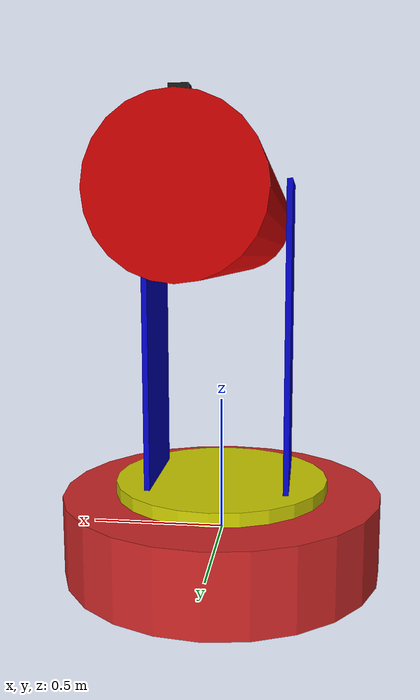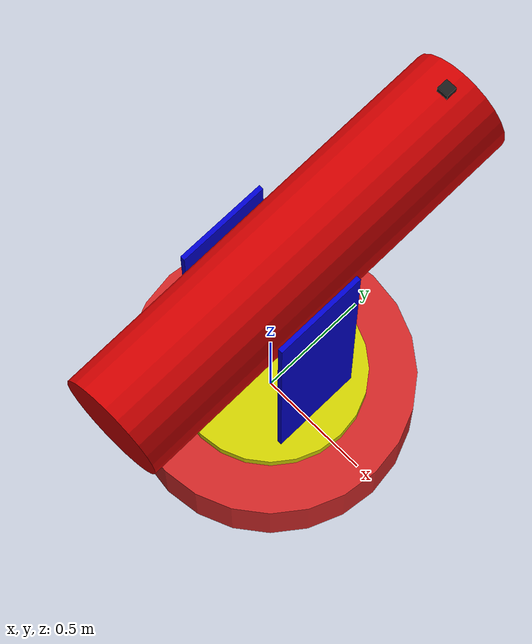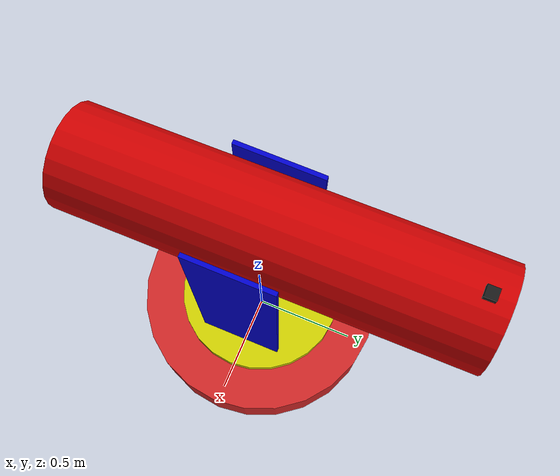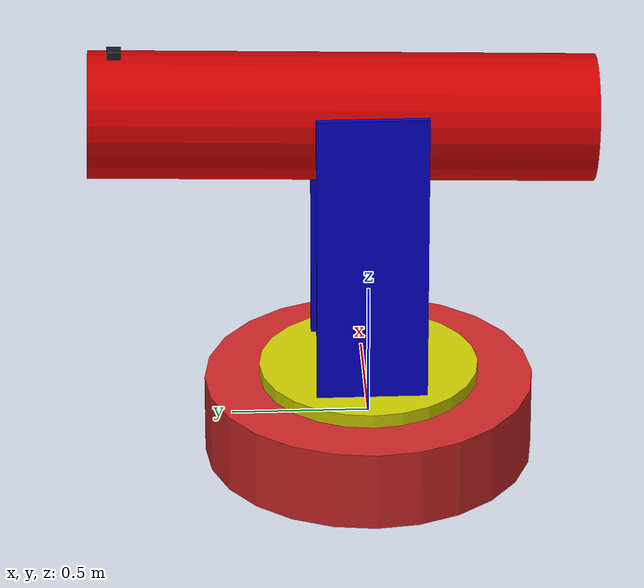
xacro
<?xml version="1.0"?>
<robot xmlns:xacro="http://www.ros.org/wiki/xacro" name="robot_shooter">

  <!-- Constants for robot dimensions -->

  <xacro:property name="camera_size" value="0.05" />
    <!-- BASE LINK-->
  <xacro:property name="base_link_radius" value="0.6"/>
  <xacro:property name="base_link_length" value="0.3"/>

  <!-- PAN LINK-->
  <xacro:property name="pan_link_radius" value="0.4"/>
  <xacro:property name="pan_link_length" value="0.1"/>

  <!-- BOTH PILLAR LINK-->
  <xacro:property name="pillar_link_x" value="0.02"/>
  <xacro:property name="pillar_link_y" value="0.4"/>
  <xacro:property name="pillar_link_z" value="1.5"/>

  <!-- BARREL LINK-->
  <xacro:property name="barrel_link_radius" value="1.25"/>
  <xacro:property name="barrel_link_length" value="1.8"/>

  <!-- LINK MASS -->
  <xacro:property name="base_link_mass" value="5.0"/>
  <xacro:property name="pan_link_mass" value="2.0"/>
  <xacro:property name="pillar_link_mass" value="1.5"/>
  <xacro:property name="barrel_link_mass" value="1.0"/>

  <xacro:macro name="inertia_base">
    <inertial>
      <origin xyz="0 0 0" rpy="0 0 0"/>
      <mass value="${base_link_mass}"/>
      <inertia
        ixx="${(1/12.0)*base_link_mass*(3*base_link_radius*base_link_radius + base_link_length*base_link_length)}"
        ixy="0.0" ixz="0.0"
        iyy="${(1/12.0)*base_link_mass*(3*base_link_radius*base_link_radius + base_link_length*base_link_length)}"
        iyz="0.0"
        izz="${0.5*base_link_mass*base_link_radius*base_link_radius}"/>
    </inertial>
  </xacro:macro>

  <xacro:macro name="inertia_pan">
    <inertial>
      <origin xyz="0 0 0" rpy="0 0 0"/>
      <mass value="${pan_link_mass}"/>
      <inertia
        ixx="${(1/12.0)*pan_link_mass*(3*pan_link_radius*pan_link_radius + pan_link_length*pan_link_length)}"
        ixy="0.0" ixz="0.0"
        iyy="${(1/12.0)*pan_link_mass*(3*pan_link_radius*pan_link_radius + pan_link_length*pan_link_length)}"
        iyz="0.0"
        izz="${0.5*pan_link_mass*pan_link_radius*pan_link_radius}"/>
    </inertial>
  </xacro:macro>

  <material name="red">
    <color rgba="0.8 0 0 1"/>
  </material>

  <material name="green">
    <color rgba="0 0.8 0 1"/>
  </material>

  <material name="blue">
    <color rgba="0 0 0.8 1"/>
  </material>

  <material name="yellow">
    <color rgba="0.8 0.8 0 1"/>
  </material>

<!-- ROBOT CONSTRUCTION -->

  <!-- Robot Base Link -->
  <link name="base_link">
    <visual>
      <geometry>
        <cylinder radius="${base_link_radius}" length="${base_link_length}"/>
      </geometry>
    </visual>
    <collision>
      <geometry>

        <cylinder radius="${base_link_radius}" length="${base_link_length}"/>
      </geometry>
    </collision>

    <xacro:inertia_base />

  </link>

  <!-- Pan Joint - Rotates horizontally -->
  <joint name="base_to_pan_joint" type="continuous">
    <axis xyz="0 0 1" />
    <parent link="base_link"/>
    <child link="pan_link"/>
    <origin xyz="0 0 ${base_link_length/2}"/>
    <dynamics damping="0.1" friction="0.1"/>
  </joint>

  <link name="pan_link">
    <visual>
      <geometry>
        <cylinder radius="${pan_link_radius}" length="${pan_link_length}"/>
      </geometry>
      <material name="yellow"/>
      <origin rpy="0 0 0" xyz="0 0 0"/>
    </visual>
    <collision>
      <geometry>
        <cylinder radius="${pan_link_radius}" length="${pan_link_length}"/>
      </geometry>
    </collision>
    <xacro:inertia_pan />
  </link>

  <joint name="pan_to_left_pillar_joint" type="fixed">
    <parent link="pan_link"/>
    <child link="left_pillar_link"/>
    <origin xyz="0.25 0 0.4"/>
  </joint>

  <link name="left_pillar_link">
    <visual>
      <geometry>
        <box size="${pillar_link_x} ${pillar_link_y} ${pillar_link_z}" />
      </geometry>
      <origin rpy="0 0 0" xyz="0 0 0"/>
      <material name="blue"/>
    </visual>
    <collision>
      <geometry>
        <box size="${pillar_link_x} ${pillar_link_y} ${pillar_link_z}" />
      </geometry>
      <origin xyz="0.0 0.0 0.0" rpy="0.0 0.0 0.0"/>
    </collision>
    <material name="blue" />

  </link>

  <joint name="pan_to_right_pillar_joint" type="fixed">
    <parent link="pan_link"/>
    <child link="right_pillar_link"/>
    <origin xyz="-0.25 0 0.4"/>
  </joint>

  <link name="right_pillar_link">
    <visual>
      <geometry>
        <box size="${pillar_link_x} ${pillar_link_y} ${pillar_link_z}" />
      </geometry>
      <origin rpy="0 0 0" xyz="0 0 0"/>
      <material name="blue" />
    </visual>
     <collision>
      <geometry>
        <box size="${pillar_link_x} ${pillar_link_y} ${pillar_link_z}" />
      </geometry>
      <origin xyz="0.0 0.0 0.0" rpy="0.0 0.0 0.0"/>
    </collision>
    <inertial>
      <mass value="0.5"/>
      <inertia ixx="0.005" ixy="0" ixz="0" iyy="0.005" iyz="0" izz="0.005"/>
    </inertial>
  </link>

  <!-- Gun barrel -->
  <joint name="right_pillar_to_barrel_joint" type="revolute">
    <parent link="right_pillar_link"/>
    <child link="barrel_link"/>
    <origin xyz="0.2 0 0.75" rpy="0 0 0"/>
    <axis xyz="1 0 0" />
    <limit lower="-0.5" upper="0.5" effort="10.0" velocity="1.0"/>
  </joint>

  <link name="barrel_link">
    <visual>
      <geometry>
        <cylinder radius="${barrel_link_radius/5.5}" length="${barrel_link_length}"/>
      </geometry>
      <origin rpy="1.6 0 0" xyz="0.05 0.1 -0.1"/>
      <material name="red"/>
    </visual>
    <collision>
      <geometry>
        <cylinder radius="${barrel_link_radius/5}" length="${barrel_link_length}"/>
      </geometry>
      <origin rpy="1.65 0 0" xyz="0 0.1 0.1"/>
    </collision>
    <inertial>
      <mass value="${barrel_link_mass}"/>
      <inertia ixx="0.001" ixy="0" ixz="0" iyy="0.001" iyz="0" izz="0.001"/>
    </inertial>
  </link>

  <!-- Camera joint and link -->
  <joint name="camera_joint" type="fixed">
    <parent link="barrel_link"/>
    <child link="camera_link"/>
    <origin xyz="0.05 ${barrel_link_length/2} 0.15" rpy="0 0 1.5708"/>
  </joint>

  <link name="camera_link">
    <visual>
      <geometry>
        <box size="${camera_size} ${camera_size} ${camera_size}"/>
      </geometry>
      <origin xyz="0.0 0.0 0.0" rpy="0.0 0.0 0.0"/>
      <material name="black">
        <color rgba="0.1 0.1 0.1 1.0"/>
      </material>
    </visual>
    <collision>
      <geometry>
        <box size="${camera_size} ${camera_size} ${camera_size}"/>
      </geometry>
    </collision>
    <inertial>
      <origin xyz="0.0 0.0 0.0"/>
      <mass value="0.1"/>
      <inertia ixx="0.0001" ixy="0" ixz="0" iyy="0.0001" iyz="0" izz="0.0001"/>
    </inertial>
  </link>

  <!-- Camera sensor -->

  <!-- Camera sensor  -->
  <gazebo reference="camera_link">
    <sensor type="camera" name="camera">
      <visualize>true</visualize>
      <update_rate>30.0</update_rate>
      <camera name="shooter_camera">
        <horizontal_fov>1.0472</horizontal_fov>
        <image>
          <width>640</width>
          <height>480</height>
          <format>R8G8B8</format>
        </image>
        <clip>
          <near>0.02</near>
          <far>80</far>
        </clip>
        <noise>
          <type>gaussian</type>
          <mean>0.0</mean>
          <stddev>0.007</stddev>
        </noise>
      </camera>
      <plugin name="camera_controller" filename="libgazebo_ros_camera.so">
        <alwaysOn>true</alwaysOn>
        <updateRate>0.0</updateRate>
        <cameraName>shooter/camera</cameraName>
        <imageTopicName>image_raw</imageTopicName>
        <cameraInfoTopicName>camera_info</cameraInfoTopicName>
        <frameName>camera_link</frameName>
        <hackBaseline>0.07</hackBaseline>
        <distortionK1>0.0</distortionK1>
        <distortionK2>0.0</distortionK2>
        <distortionK3>0.0</distortionK3>
        <distortionT1>0.0</distortionT1>
        <distortionT2>0.0</distortionT2>
      </plugin>
    </sensor>
  </gazebo>

  <!-- Control for pan and tilt joints -->

  <gazebo>
    <plugin filename="libgazebo_ros2_control.so" name="gazebo_ros2_control">
      <parameters>$(find robot_shooter)/config/shooter_controllers.yaml</parameters>
    </plugin>
  </gazebo>

  <ros2_control name="GazeboSystem" type="system">
    <hardware>
      <plugin>gazebo_ros2_control/GazeboSystem</plugin>
    </hardware>

    <joint name="base_to_pan_joint">
      <command_interface name="position">
        <param name="min">-1</param>
        <param name="max">1</param>
      </command_interface>
      <state_interface name="position">
        <param name="initial_value">0.0</param>
      </state_interface>
      <state_interface name="velocity"/>
      <state_interface name="effort"/>
    </joint>

    <joint name="right_pillar_to_barrel_joint">
      <command_interface name="position">
        <param name="min">-1.57</param>
        <param name="max">1.57</param>
      </command_interface>
      <state_interface name="position"/>
      <state_interface name="velocity"/>
      <state_interface name="effort"/>
    </joint>
  </ros2_control>

  <!-- Transmissions for ros_control -->
  <transmission name="pan_trans">
    <type>transmission_interface/SimpleTransmission</type>
    <joint name="base_to_pan_joint">
      <hardwareInterface>hardware_interface/PositionJointInterface</hardwareInterface>
    </joint>
    <actuator name="pan_motor">
      <hardwareInterface>hardware_interface/PositionJointInterface</hardwareInterface>
      <mechanicalReduction>1</mechanicalReduction>
    </actuator>
  </transmission>

  <transmission name="tilt_trans">
    <type>transmission_interface/SimpleTransmission</type>
    <joint name="right_pillar_to_barrel_joint">
      <hardwareInterface>hardware_interface/PositionJointInterface</hardwareInterface>
    </joint>
    <actuator name="tilt_motor">
      <hardwareInterface>hardware_interface/PositionJointInterface</hardwareInterface>
      <mechanicalReduction>1</mechanicalReduction>
    </actuator>
  </transmission>

  <!-- Color for Gazebo -->
  <gazebo reference="base_link">
    <material>Gazebo/Red</material>
  </gazebo>

  <gazebo reference="pan_link">
    <material>Gazebo/Yellow</material>
  </gazebo>

  <gazebo reference="right_pillar_link">
    <material>Gazebo/Blue</material>
  </gazebo>

  <gazebo reference="left_pillar_link">
    <material>Gazebo/Blue</material>
  </gazebo>

  <gazebo reference="barrel_link">
    <material>Gazebo/Red</material>
  </gazebo>

  <gazebo reference="camera_link">
    <material>Gazebo/Black</material>
  </gazebo>
</robot>
